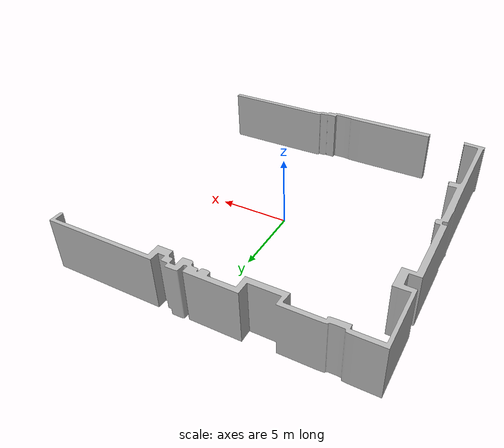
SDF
<?xml version="1.0" ?>
<sdf version="1.5">
  <model name="Digisky_Hangar">
    <static>true</static>
    <link name="link">
      <collision name="collision">
        <geometry>
          <mesh>
            <uri>model://digisky_hangar/meshes/digisky_hangar.dae</uri>
          </mesh>
        </geometry>
      </collision>
      <visual name="visual">
        <geometry>
          <mesh>
            <uri>model://digisky_hangar/meshes/digisky_hangar.dae</uri>
          </mesh>
        </geometry>
      </visual>
    </link>
  </model>
</sdf>
